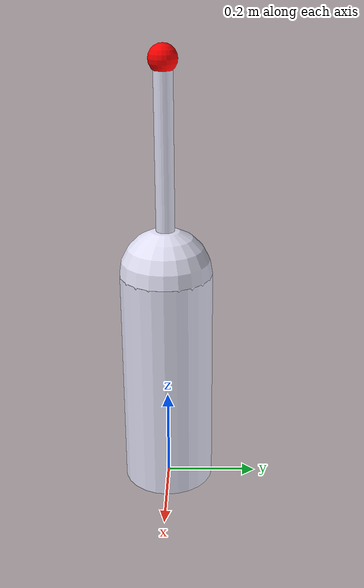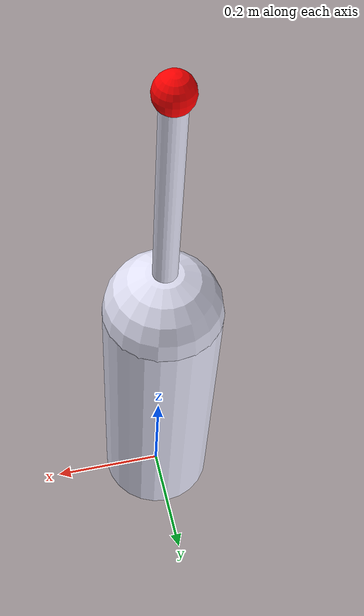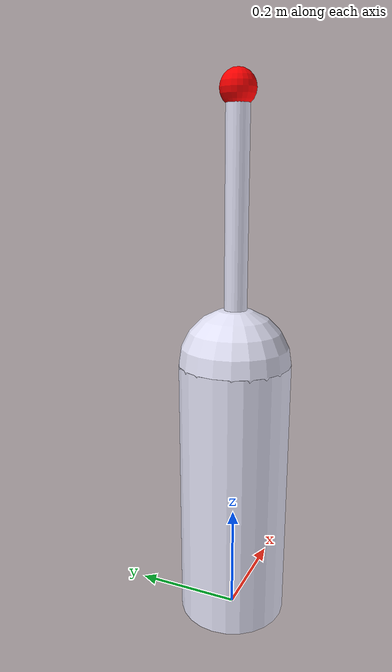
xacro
<?xml version="1.0"?>
<robot name="manipulator_robot" xmlns:xacro="http://www.ros.org/wiki/xacro">

      <!-- Define custom colors for visualization -->
    <material name="blue">
        <color rgba="0.2 0.2 1 0.7"/>
    </material>
    <material name="black">
        <color rgba="0 0 0 0.95"/>
    </material>
    <material name="red">
        <color rgba="1 0 0 0.95"/>
    </material>

    <material name="silver">
        <color rgba="0.9 0.9 0.98 1.0"/>
    </material>

    <!-- Fixed link 'world' to represent a fixed world frame -->
    <link name="world"/>

    <!--
      Joint 1: Revolute (world -> base_link)
      Limits: -180° to 180° (i.e., -π to π)
    -->
    <joint name="world_to_base_joint" type="revolute">
        <parent link="world"/>
        <child link="base_link"/>
        <origin xyz="0 0 0" rpy="0 0 0"/>
        <axis xyz="0 0 1"/>
        <limit lower="${-pi}" upper="${pi}" effort="10" velocity="1.0"/>
    </joint>

    <!-- Base link -->
    <link name="base_link">
        <inertial>
            <origin xyz="0 0 0.25" rpy="0 0 0"/>
            <mass value="1.0"/>
        <inertia
                    ixx="0.0174375"
                    ixy="0.0"
                    ixz="0.0"
                    iyy="0.0174375"
                    iyz="0.0"
                    izz="0.005"/>
        </inertial>
        <visual>
            <origin xyz="0 0 0.25" rpy="0 0 0"/>
            <geometry>
                <cylinder length="0.5" radius="0.1"/>
            </geometry>
            <material name="silver"/>
        </visual>
        <collision>
            <origin xyz="0 0 0.25" rpy="0 0 0"/>
            <geometry>
                <cylinder length="0.5" radius="0.1"/>
            </geometry>
        </collision>
        <!-- added sphere just for visualization purposes, didn't add collision for this one -->
        <visual>
            <material name="silver"/>
            <origin xyz="0 0 0.5" rpy="0 0 0"/>
            <geometry>
                <sphere radius="0.1"/>
            </geometry>
        </visual>
    </link>

    <!--
      Joint 2: Revolute (base_link -> link1)
      Limits: -90° to 90° (-π/2 to π/2)
    -->
    <joint name="base_link_to_link1_joint" type="revolute">
        <parent link="base_link"/>
        <child link="link1"/>
        <origin xyz="0 0 0.55" rpy="0 0 0"/>
        <axis xyz="0 1 0"/>
        <limit lower="${-pi / 2.0}" upper="${pi / 2.0}" effort="10" velocity="1.0"/>
    </joint>

    <!-- Link1 -->
    <link name="link1">
        <inertial>
            <origin xyz="0 0 0.2" rpy="0 0 0"/>
            <mass value="0.5"/>
            <inertia ixx="0.0067167"
                    ixy="0.0"
                    ixz="0.0"
                    iyy="0.0067167"
                    iyz="0.0"
                    izz="0.0002"/>
        </inertial>

        <visual>
            <origin xyz="0 0 0.2" rpy="0 0 0"/>
            <geometry>
                <cylinder length="0.4" radius="0.02"/>
            </geometry>
            <material name="silver"/>
        </visual>

        <collision>
            <origin xyz="0 0 0.2" rpy="0 0 0"/>
            <geometry>
                <cylinder length="0.32" radius="0.02"/>
            </geometry>
        </collision>
        <!-- Added collision geometry matching the visual geometry -->
    </link>

    <link name="end_effector">
    <visual>
        <geometry>
        <sphere radius="0.03"/>  <!-- Visual representation -->
        </geometry>
        <material name="red"/>
    </visual>
    <collision>
        <geometry>
        <sphere radius="0.03"/>  <!-- Collision geometry -->
        </geometry>
    </collision>
    </link>

    <joint name="line1_to_end_effector_join" type="fixed">
    <parent link="link1"/>
    <child link="end_effector"/>
    <origin xyz="0 0 0.4" rpy="0 0 0"/>
    </joint>

</robot>
